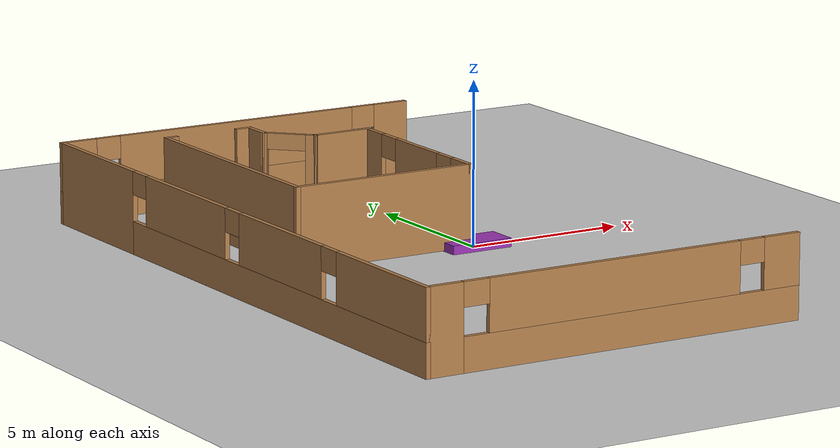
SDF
<sdf version="1.6">
 <world name="default">
  <model name="ground_plane">
   <static>1</static>
   <link name="link">
    <collision name="collision">
     <geometry><plane><normal>0 0 1</normal><size>100 100</size></plane></geometry>
     <surface>
      <contact><collide_bitmask>65535</collide_bitmask></contact>
      <friction><ode><mu>100</mu><mu2>50</mu2></ode></friction>
     </surface>
    </collision>
    <visual name="visual">
     <cast_shadows>0</cast_shadows>
     <geometry><plane><normal>0 0 1</normal><size>100 100</size></plane></geometry>
     <material>
      <script><uri>file://media/materials/scripts/gazebo.material</uri><name>Gazebo/Grey</name></script>
     </material>
    </visual>
   </link>
  </model>
  <model name="hospital_room_empty">
   <link name="Wall_0">
    <pose>-4e-06 -3.9165 0 0 -0 0</pose>
    <visual name="Wall_0_Visual">
     <pose>0 0 1.25 0 -0 0</pose>
     <geometry><box><size>6 0.15 2.5</size></box></geometry>
     <material>
      <script><uri>file://media/materials/scripts/gazebo.material</uri><name>Gazebo/Wood</name></script>
      <ambient>1 1 1 1</ambient>
     </material>
     <meta><layer>0</layer></meta>
    </visual>
    <collision name="Wall_0_Collision">
     <pose>0 0 1.25 0 -0 0</pose>
     <geometry><box><size>6 0.15 2.5</size></box></geometry>
     <surface>
      <friction>
       <ode><mu>1</mu><mu2>1</mu2><fdir1>0 0 0</fdir1><slip1>0</slip1><slip2>0</slip2></ode>
       <torsional>
        <coefficient>1</coefficient>
        <patch_radius>0</patch_radius>
        <surface_radius>0</surface_radius>
        <use_patch_radius>1</use_patch_radius>
        <ode><slip>0</slip></ode>
       </torsional>
      </friction>
      <bounce><restitution_coefficient>0</restitution_coefficient><threshold>1e+06</threshold></bounce>
      <contact>
       <collide_without_contact>0</collide_without_contact>
       <collide_without_contact_bitmask>1</collide_without_contact_bitmask>
       <collide_bitmask>1</collide_bitmask>
       <ode>
        <soft_cfm>0</soft_cfm>
        <soft_erp>0.2</soft_erp>
        <kp>1e+13</kp>
        <kd>1</kd>
        <max_vel>0.01</max_vel>
        <min_depth>0</min_depth>
       </ode>
       <bullet>
        <split_impulse>1</split_impulse>
        <split_impulse_penetration_threshold>-0.01</split_impulse_penetration_threshold>
        <soft_cfm>0</soft_cfm>
        <soft_erp>0.2</soft_erp>
        <kp>1e+13</kp>
        <kd>1</kd>
       </bullet>
      </contact>
     </surface>
    </collision>
   </link>
   <link name="Wall_3">
    <pose>-2.925 0 0 0 -0 1.5708</pose>
    <visual name="Wall_3_Visual">
     <pose>0 0 1.25 0 -0 0</pose>
     <geometry><box><size>7.98302 0.15 2.5</size></box></geometry>
     <material>
      <script><uri>file://media/materials/scripts/gazebo.material</uri><name>Gazebo/Wood</name></script>
      <ambient>1 1 1 1</ambient>
     </material>
     <meta><layer>0</layer></meta>
    </visual>
    <collision name="Wall_3_Collision">
     <pose>0 0 1.25 0 -0 0</pose>
     <geometry><box><size>7.98302 0.15 2.5</size></box></geometry>
     <surface>
      <friction>
       <ode><mu>1</mu><mu2>1</mu2><fdir1>0 0 0</fdir1><slip1>0</slip1><slip2>0</slip2></ode>
       <torsional>
        <coefficient>1</coefficient>
        <patch_radius>0</patch_radius>
        <surface_radius>0</surface_radius>
        <use_patch_radius>1</use_patch_radius>
        <ode><slip>0</slip></ode>
       </torsional>
      </friction>
      <bounce><restitution_coefficient>0</restitution_coefficient><threshold>1e+06</threshold></bounce>
      <contact>
       <collide_without_contact>0</collide_without_contact>
       <collide_without_contact_bitmask>1</collide_without_contact_bitmask>
       <collide_bitmask>1</collide_bitmask>
       <ode>
        <soft_cfm>0</soft_cfm>
        <soft_erp>0.2</soft_erp>
        <kp>1e+13</kp>
        <kd>1</kd>
        <max_vel>0.01</max_vel>
        <min_depth>0</min_depth>
       </ode>
       <bullet>
        <split_impulse>1</split_impulse>
        <split_impulse_penetration_threshold>-0.01</split_impulse_penetration_threshold>
        <soft_cfm>0</soft_cfm>
        <soft_erp>0.2</soft_erp>
        <kp>1e+13</kp>
        <kd>1</kd>
       </bullet>
      </contact>
     </surface>
    </collision>
   </link>
   <link name="Wall_4">
    <pose>-1.5 3.9165 0 0 -0 0</pose>
    <visual name="Wall_4_Visual_0">
     <pose>-1.28125 0 1.25 0 -0 0</pose>
     <geometry><box><size>0.437506 0.15 2.5</size></box></geometry>
     <material>
      <script><uri>file://media/materials/scripts/gazebo.material</uri><name>Gazebo/Wood</name></script>
      <ambient>1 1 1 1</ambient>
     </material>
     <meta><layer>0</layer></meta>
    </visual>
    <visual name="Wall_4_Visual_1">
     <pose>0.218753 0 0.25 0 -0 0</pose>
     <geometry><box><size>2.56249 0.15 0.5</size></box></geometry>
     <material>
      <script><uri>file://media/materials/scripts/gazebo.material</uri><name>Gazebo/Wood</name></script>
      <ambient>1 1 1 1</ambient>
     </material>
     <meta><layer>0</layer></meta>
    </visual>
    <visual name="Wall_4_Visual_2">
     <pose>1.21875 0 1.5 0 -0 0</pose>
     <geometry><box><size>0.562494 0.15 2</size></box></geometry>
     <material>
      <script><uri>file://media/materials/scripts/gazebo.material</uri><name>Gazebo/Wood</name></script>
      <ambient>1 1 1 1</ambient>
     </material>
     <meta><layer>0</layer></meta>
    </visual>
    <collision name="Wall_4_Collision_0">
     <pose>-1.28125 0 1.25 0 -0 0</pose>
     <geometry><box><size>0.437506 0.15 2.5</size></box></geometry>
     <surface>
      <friction>
       <ode><mu>1</mu><mu2>1</mu2><fdir1>0 0 0</fdir1><slip1>0</slip1><slip2>0</slip2></ode>
       <torsional>
        <coefficient>1</coefficient>
        <patch_radius>0</patch_radius>
        <surface_radius>0</surface_radius>
        <use_patch_radius>1</use_patch_radius>
        <ode><slip>0</slip></ode>
       </torsional>
      </friction>
      <bounce><restitution_coefficient>0</restitution_coefficient><threshold>1e+06</threshold></bounce>
      <contact>
       <collide_without_contact>0</collide_without_contact>
       <collide_without_contact_bitmask>1</collide_without_contact_bitmask>
       <collide_bitmask>1</collide_bitmask>
       <ode>
        <soft_cfm>0</soft_cfm>
        <soft_erp>0.2</soft_erp>
        <kp>1e+13</kp>
        <kd>1</kd>
        <max_vel>0.01</max_vel>
        <min_depth>0</min_depth>
       </ode>
       <bullet>
        <split_impulse>1</split_impulse>
        <split_impulse_penetration_threshold>-0.01</split_impulse_penetration_threshold>
        <soft_cfm>0</soft_cfm>
        <soft_erp>0.2</soft_erp>
        <kp>1e+13</kp>
        <kd>1</kd>
       </bullet>
      </contact>
     </surface>
    </collision>
    <collision name="Wall_4_Collision_1">
     <pose>0.218753 0 0.25 0 -0 0</pose>
     <geometry><box><size>2.56249 0.15 0.5</size></box></geometry>
     <surface>
      <friction>
       <ode><mu>1</mu><mu2>1</mu2><fdir1>0 0 0</fdir1><slip1>0</slip1><slip2>0</slip2></ode>
       <torsional>
        <coefficient>1</coefficient>
        <patch_radius>0</patch_radius>
        <surface_radius>0</surface_radius>
        <use_patch_radius>1</use_patch_radius>
        <ode><slip>0</slip></ode>
       </torsional>
      </friction>
      <bounce><restitution_coefficient>0</restitution_coefficient><threshold>1e+06</threshold></bounce>
      <contact>
       <collide_without_contact>0</collide_without_contact>
       <collide_without_contact_bitmask>1</collide_without_contact_bitmask>
       <collide_bitmask>1</collide_bitmask>
       <ode>
        <soft_cfm>0</soft_cfm>
        <soft_erp>0.2</soft_erp>
        <kp>1e+13</kp>
        <kd>1</kd>
        <max_vel>0.01</max_vel>
        <min_depth>0</min_depth>
       </ode>
       <bullet>
        <split_impulse>1</split_impulse>
        <split_impulse_penetration_threshold>-0.01</split_impulse_penetration_threshold>
        <soft_cfm>0</soft_cfm>
        <soft_erp>0.2</soft_erp>
        <kp>1e+13</kp>
        <kd>1</kd>
       </bullet>
      </contact>
     </surface>
    </collision>
    <collision name="Wall_4_Collision_2">
     <pose>1.21875 0 1.5 0 -0 0</pose>
     <geometry><box><size>0.562494 0.15 2</size></box></geometry>
     <surface>
      <friction>
       <ode><mu>1</mu><mu2>1</mu2><fdir1>0 0 0</fdir1><slip1>0</slip1><slip2>0</slip2></ode>
       <torsional>
        <coefficient>1</coefficient>
        <patch_radius>0</patch_radius>
        <surface_radius>0</surface_radius>
        <use_patch_radius>1</use_patch_radius>
        <ode><slip>0</slip></ode>
       </torsional>
      </friction>
      <bounce><restitution_coefficient>0</restitution_coefficient><threshold>1e+06</threshold></bounce>
      <contact>
       <collide_without_contact>0</collide_without_contact>
       <collide_without_contact_bitmask>1</collide_without_contact_bitmask>
       <collide_bitmask>1</collide_bitmask>
       <ode>
        <soft_cfm>0</soft_cfm>
        <soft_erp>0.2</soft_erp>
        <kp>1e+13</kp>
        <kd>1</kd>
        <max_vel>0.01</max_vel>
        <min_depth>0</min_depth>
       </ode>
       <bullet>
        <split_impulse>1</split_impulse>
        <split_impulse_penetration_threshold>-0.01</split_impulse_penetration_threshold>
        <soft_cfm>0</soft_cfm>
        <soft_erp>0.2</soft_erp>
        <kp>1e+13</kp>
        <kd>1</kd>
       </bullet>
      </contact>
     </surface>
    </collision>
   </link>
   <link name="Wall_5">
    <pose>-0.075004 3.4915 0 0 0 -1.5708</pose>
    <visual name="Wall_5_Visual">
     <pose>0 0 1.25 0 -0 0</pose>
     <geometry><box><size>1 0.15 2.5</size></box></geometry>
     <material>
      <script><uri>file://media/materials/scripts/gazebo.material</uri><name>Gazebo/Wood</name></script>
      <ambient>1 1 1 1</ambient>
     </material>
     <meta><layer>0</layer></meta>
    </visual>
    <collision name="Wall_5_Collision">
     <pose>0 0 1.25 0 -0 0</pose>
     <geometry><box><size>1 0.15 2.5</size></box></geometry>
     <surface>
      <friction>
       <ode><mu>1</mu><mu2>1</mu2><fdir1>0 0 0</fdir1><slip1>0</slip1><slip2>0</slip2></ode>
       <torsional>
        <coefficient>1</coefficient>
        <patch_radius>0</patch_radius>
        <surface_radius>0</surface_radius>
        <use_patch_radius>1</use_patch_radius>
        <ode><slip>0</slip></ode>
       </torsional>
      </friction>
      <bounce><restitution_coefficient>0</restitution_coefficient><threshold>1e+06</threshold></bounce>
      <contact>
       <collide_without_contact>0</collide_without_contact>
       <collide_without_contact_bitmask>1</collide_without_contact_bitmask>
       <collide_bitmask>1</collide_bitmask>
       <ode>
        <soft_cfm>0</soft_cfm>
        <soft_erp>0.2</soft_erp>
        <kp>1e+13</kp>
        <kd>1</kd>
        <max_vel>0.01</max_vel>
        <min_depth>0</min_depth>
       </ode>
       <bullet>
        <split_impulse>1</split_impulse>
        <split_impulse_penetration_threshold>-0.01</split_impulse_penetration_threshold>
        <soft_cfm>0</soft_cfm>
        <soft_erp>0.2</soft_erp>
        <kp>1e+13</kp>
        <kd>1</kd>
       </bullet>
      </contact>
     </surface>
    </collision>
   </link>
   <link name="Wall_7">
    <pose>2.925 -1 0 0 -0 1.5708</pose>
    <visual name="Wall_7_Visual_0">
     <pose>-2.47597 0 1.25 0 -0 0</pose>
     <geometry><box><size>1.03106 0.15 2.5</size></box></geometry>
     <material>
      <script><uri>file://media/materials/scripts/gazebo.material</uri><name>Gazebo/Wood</name></script>
      <ambient>0.921569 0.807843 0.615686 1</ambient>
     </material>
     <meta><layer>0</layer></meta>
    </visual>
    <visual name="Wall_7_Visual_1">
     <pose>0.515531 0 0.5 0 -0 0</pose>
     <geometry><box><size>4.95194 0.15 1</size></box></geometry>
     <material>
      <script><uri>file://media/materials/scripts/gazebo.material</uri><name>Gazebo/Wood</name></script>
      <ambient>0.921569 0.807843 0.615686 1</ambient>
     </material>
     <meta><layer>0</layer></meta>
    </visual>
    <visual name="Wall_7_Visual_2">
     <pose>0.016139 0 1.75 0 -0 0</pose>
     <geometry><box><size>2.35315 0.15 1.5</size></box></geometry>
     <material>
      <script><uri>file://media/materials/scripts/gazebo.material</uri><name>Gazebo/Wood</name></script>
      <ambient>0.921569 0.807843 0.615686 1</ambient>
     </material>
     <meta><layer>0</layer></meta>
    </visual>
    <visual name="Wall_7_Visual_3">
     <pose>2.49211 0 1.75 0 -0 0</pose>
     <geometry><box><size>0.998785 0.15 1.5</size></box></geometry>
     <material>
      <script><uri>file://media/materials/scripts/gazebo.material</uri><name>Gazebo/Wood</name></script>
      <ambient>0.921569 0.807843 0.615686 1</ambient>
     </material>
     <meta><layer>0</layer></meta>
    </visual>
    <visual name="Wall_7_Visual_4">
     <pose>-1.56044 0 2.15 0 -0 0</pose>
     <geometry><box><size>0.8 0.15 0.7</size></box></geometry>
     <material>
      <script><uri>file://media/materials/scripts/gazebo.material</uri><name>Gazebo/Wood</name></script>
      <ambient>0.921569 0.807843 0.615686 1</ambient>
     </material>
     <meta><layer>0</layer></meta>
    </visual>
    <visual name="Wall_7_Visual_5">
     <pose>1.59272 0 2.15 0 -0 0</pose>
     <geometry><box><size>0.8 0.15 0.7</size></box></geometry>
     <material>
      <script><uri>file://media/materials/scripts/gazebo.material</uri><name>Gazebo/Wood</name></script>
      <ambient>0.921569 0.807843 0.615686 1</ambient>
     </material>
     <meta><layer>0</layer></meta>
    </visual>
    <collision name="Wall_7_Collision_0">
     <pose>-2.47597 0 1.25 0 -0 0</pose>
     <geometry><box><size>1.03106 0.15 2.5</size></box></geometry>
     <surface>
      <friction>
       <ode><mu>1</mu><mu2>1</mu2><fdir1>0 0 0</fdir1><slip1>0</slip1><slip2>0</slip2></ode>
       <torsional>
        <coefficient>1</coefficient>
        <patch_radius>0</patch_radius>
        <surface_radius>0</surface_radius>
        <use_patch_radius>1</use_patch_radius>
        <ode><slip>0</slip></ode>
       </torsional>
      </friction>
      <bounce><restitution_coefficient>0</restitution_coefficient><threshold>1e+06</threshold></bounce>
      <contact>
       <collide_without_contact>0</collide_without_contact>
       <collide_without_contact_bitmask>1</collide_without_contact_bitmask>
       <collide_bitmask>1</collide_bitmask>
       <ode>
        <soft_cfm>0</soft_cfm>
        <soft_erp>0.2</soft_erp>
        <kp>1e+13</kp>
        <kd>1</kd>
        <max_vel>0.01</max_vel>
        <min_depth>0</min_depth>
       </ode>
       <bullet>
        <split_impulse>1</split_impulse>
        <split_impulse_penetration_threshold>-0.01</split_impulse_penetration_threshold>
        <soft_cfm>0</soft_cfm>
        <soft_erp>0.2</soft_erp>
        <kp>1e+13</kp>
        <kd>1</kd>
       </bullet>
      </contact>
     </surface>
    </collision>
    <collision name="Wall_7_Collision_1">
     <pose>0.515531 0 0.5 0 -0 0</pose>
     <geometry><box><size>4.95194 0.15 1</size></box></geometry>
     <surface>
      <friction>
       <ode><mu>1</mu><mu2>1</mu2><fdir1>0 0 0</fdir1><slip1>0</slip1><slip2>0</slip2></ode>
       <torsional>
        <coefficient>1</coefficient>
        <patch_radius>0</patch_radius>
        <surface_radius>0</surface_radius>
        <use_patch_radius>1</use_patch_radius>
        <ode><slip>0</slip></ode>
       </torsional>
      </friction>
      <bounce><restitution_coefficient>0</restitution_coefficient><threshold>1e+06</threshold></bounce>
      <contact>
       <collide_without_contact>0</collide_without_contact>
       <collide_without_contact_bitmask>1</collide_without_contact_bitmask>
       <collide_bitmask>1</collide_bitmask>
       <ode>
        <soft_cfm>0</soft_cfm>
        <soft_erp>0.2</soft_erp>
        <kp>1e+13</kp>
        <kd>1</kd>
        <max_vel>0.01</max_vel>
        <min_depth>0</min_depth>
       </ode>
       <bullet>
        <split_impulse>1</split_impulse>
        <split_impulse_penetration_threshold>-0.01</split_impulse_penetration_threshold>
        <soft_cfm>0</soft_cfm>
        <soft_erp>0.2</soft_erp>
        <kp>1e+13</kp>
        <kd>1</kd>
       </bullet>
      </contact>
     </surface>
    </collision>
    <collision name="Wall_7_Collision_2">
     <pose>0.016139 0 1.75 0 -0 0</pose>
     <geometry><box><size>2.35315 0.15 1.5</size></box></geometry>
     <surface>
      <friction>
       <ode><mu>1</mu><mu2>1</mu2><fdir1>0 0 0</fdir1><slip1>0</slip1><slip2>0</slip2></ode>
       <torsional>
        <coefficient>1</coefficient>
        <patch_radius>0</patch_radius>
        <surface_radius>0</surface_radius>
        <use_patch_radius>1</use_patch_radius>
        <ode><slip>0</slip></ode>
       </torsional>
      </friction>
      <bounce><restitution_coefficient>0</restitution_coefficient><threshold>1e+06</threshold></bounce>
      <contact>
       <collide_without_contact>0</collide_without_contact>
       <collide_without_contact_bitmask>1</collide_without_contact_bitmask>
       <collide_bitmask>1</collide_bitmask>
       <ode>
        <soft_cfm>0</soft_cfm>
        <soft_erp>0.2</soft_erp>
        <kp>1e+13</kp>
        <kd>1</kd>
        <max_vel>0.01</max_vel>
        <min_depth>0</min_depth>
       </ode>
       <bullet>
        <split_impulse>1</split_impulse>
        <split_impulse_penetration_threshold>-0.01</split_impulse_penetration_threshold>
        <soft_cfm>0</soft_cfm>
        <soft_erp>0.2</soft_erp>
        <kp>1e+13</kp>
        <kd>1</kd>
       </bullet>
      </contact>
     </surface>
    </collision>
    <collision name="Wall_7_Collision_3">
     <pose>2.49211 0 1.75 0 -0 0</pose>
     <geometry><box><size>0.998785 0.15 1.5</size></box></geometry>
     <surface>
      <friction>
       <ode><mu>1</mu><mu2>1</mu2><fdir1>0 0 0</fdir1><slip1>0</slip1><slip2>0</slip2></ode>
       <torsional>
        <coefficient>1</coefficient>
        <patch_radius>0</patch_radius>
        <surface_radius>0</surface_radius>
        <use_patch_radius>1</use_patch_radius>
        <ode><slip>0</slip></ode>
       </torsional>
      </friction>
      <bounce><restitution_coefficient>0</restitution_coefficient><threshold>1e+06</threshold></bounce>
      <contact>
       <collide_without_contact>0</collide_without_contact>
       <collide_without_contact_bitmask>1</collide_without_contact_bitmask>
       <collide_bitmask>1</collide_bitmask>
       <ode>
        <soft_cfm>0</soft_cfm>
        <soft_erp>0.2</soft_erp>
        <kp>1e+13</kp>
        <kd>1</kd>
        <max_vel>0.01</max_vel>
        <min_depth>0</min_depth>
       </ode>
       <bullet>
        <split_impulse>1</split_impulse>
        <split_impulse_penetration_threshold>-0.01</split_impulse_penetration_threshold>
        <soft_cfm>0</soft_cfm>
        <soft_erp>0.2</soft_erp>
        <kp>1e+13</kp>
        <kd>1</kd>
       </bullet>
      </contact>
     </surface>
    </collision>
    <collision name="Wall_7_Collision_4">
     <pose>-1.56044 0 2.15 0 -0 0</pose>
     <geometry><box><size>0.8 0.15 0.7</size></box></geometry>
     <surface>
      <friction>
       <ode><mu>1</mu><mu2>1</mu2><fdir1>0 0 0</fdir1><slip1>0</slip1><slip2>0</slip2></ode>
       <torsional>
        <coefficient>1</coefficient>
        <patch_radius>0</patch_radius>
        <surface_radius>0</surface_radius>
        <use_patch_radius>1</use_patch_radius>
        <ode><slip>0</slip></ode>
       </torsional>
      </friction>
      <bounce><restitution_coefficient>0</restitution_coefficient><threshold>1e+06</threshold></bounce>
      <contact>
       <collide_without_contact>0</collide_without_contact>
       <collide_without_contact_bitmask>1</collide_without_contact_bitmask>
       <collide_bitmask>1</collide_bitmask>
       <ode>
        <soft_cfm>0</soft_cfm>
        <soft_erp>0.2</soft_erp>
        <kp>1e+13</kp>
        <kd>1</kd>
        <max_vel>0.01</max_vel>
        <min_depth>0</min_depth>
       </ode>
       <bullet>
        <split_impulse>1</split_impulse>
        <split_impulse_penetration_threshold>-0.01</split_impulse_penetration_threshold>
        <soft_cfm>0</soft_cfm>
        <soft_erp>0.2</soft_erp>
        <kp>1e+13</kp>
        <kd>1</kd>
       </bullet>
      </contact>
     </surface>
    </collision>
    <collision name="Wall_7_Collision_5">
     <pose>1.59272 0 2.15 0 -0 0</pose>
     <geometry><box><size>0.8 0.15 0.7</size></box></geometry>
     <surface>
      <friction>
       <ode><mu>1</mu><mu2>1</mu2><fdir1>0 0 0</fdir1><slip1>0</slip1><slip2>0</slip2></ode>
       <torsional>
        <coefficient>1</coefficient>
        <patch_radius>0</patch_radius>
        <surface_radius>0</surface_radius>
        <use_patch_radius>1</use_patch_radius>
        <ode><slip>0</slip></ode>
       </torsional>
      </friction>
      <bounce><restitution_coefficient>0</restitution_coefficient><threshold>1e+06</threshold></bounce>
      <contact>
       <collide_without_contact>0</collide_without_contact>
       <collide_without_contact_bitmask>1</collide_without_contact_bitmask>
       <collide_bitmask>1</collide_bitmask>
       <ode>
        <soft_cfm>0</soft_cfm>
        <soft_erp>0.2</soft_erp>
        <kp>1e+13</kp>
        <kd>1</kd>
        <max_vel>0.01</max_vel>
        <min_depth>0</min_depth>
       </ode>
       <bullet>
        <split_impulse>1</split_impulse>
        <split_impulse_penetration_threshold>-0.01</split_impulse_penetration_threshold>
        <soft_cfm>0</soft_cfm>
        <soft_erp>0.2</soft_erp>
        <kp>1e+13</kp>
        <kd>1</kd>
       </bullet>
      </contact>
     </surface>
    </collision>
   </link>
   <link name="Wall_8">
    <pose>2 1.9166 0 0 -0 3.14148</pose>
    <visual name="Wall_8_Visual">
     <pose>0 0 1.25 0 -0 0</pose>
     <geometry><box><size>2 0.15 2.5</size></box></geometry>
     <material>
      <script><uri>file://media/materials/scripts/gazebo.material</uri><name>Gazebo/Wood</name></script>
      <ambient>1 1 1 1</ambient>
     </material>
     <meta><layer>0</layer></meta>
    </visual>
    <collision name="Wall_8_Collision">
     <pose>0 0 1.25 0 -0 0</pose>
     <geometry><box><size>2 0.15 2.5</size></box></geometry>
     <surface>
      <friction>
       <ode><mu>1</mu><mu2>1</mu2><fdir1>0 0 0</fdir1><slip1>0</slip1><slip2>0</slip2></ode>
       <torsional>
        <coefficient>1</coefficient>
        <patch_radius>0</patch_radius>
        <surface_radius>0</surface_radius>
        <use_patch_radius>1</use_patch_radius>
        <ode><slip>0</slip></ode>
       </torsional>
      </friction>
      <bounce><restitution_coefficient>0</restitution_coefficient><threshold>1e+06</threshold></bounce>
      <contact>
       <collide_without_contact>0</collide_without_contact>
       <collide_without_contact_bitmask>1</collide_without_contact_bitmask>
       <collide_bitmask>1</collide_bitmask>
       <ode>
        <soft_cfm>0</soft_cfm>
        <soft_erp>0.2</soft_erp>
        <kp>1e+13</kp>
        <kd>1</kd>
        <max_vel>0.01</max_vel>
        <min_depth>0</min_depth>
       </ode>
       <bullet>
        <split_impulse>1</split_impulse>
        <split_impulse_penetration_threshold>-0.01</split_impulse_penetration_threshold>
        <soft_cfm>0</soft_cfm>
        <soft_erp>0.2</soft_erp>
        <kp>1e+13</kp>
        <kd>1</kd>
       </bullet>
      </contact>
     </surface>
    </collision>
   </link>
   <link name="Wall_9">
    <pose>0.499996 2.4916 0 0 -0 2.35628</pose>
    <visual name="Wall_9_Visual_1">
     <pose>0.785148 0 1.25 0 -0 0</pose>
     <geometry><box><size>0.205905 0.15 2.5</size></box></geometry>
     <material>
      <script><uri>file://media/materials/scripts/gazebo.material</uri><name>Gazebo/Wood</name></script>
      <ambient>1 1 1 1</ambient>
     </material>
     <meta><layer>0</layer></meta>
    </visual>
    <visual name="Wall_9_Visual_0">
     <pose>-0.702952 0 1.25 0 -0 0</pose>
     <geometry><box><size>0.370295 0.15 2.5</size></box></geometry>
     <material>
      <script><uri>file://media/materials/scripts/gazebo.material</uri><name>Gazebo/Wood</name></script>
      <ambient>1 1 1 1</ambient>
     </material>
     <meta><layer>0</layer></meta>
    </visual>
    <visual name="Wall_9_Visual_2">
     <pose>0.082195 0 2.25 0 -0 0</pose>
     <geometry><box><size>1.2 0.15 0.5</size></box></geometry>
     <material>
      <script><uri>file://media/materials/scripts/gazebo.material</uri><name>Gazebo/Wood</name></script>
      <ambient>1 1 1 1</ambient>
     </material>
     <meta><layer>0</layer></meta>
    </visual>
    <collision name="Wall_9_Collision_0">
     <pose>-0.702952 0 1.25 0 -0 0</pose>
     <geometry><box><size>0.370295 0.15 2.5</size></box></geometry>
     <surface>
      <friction>
       <ode><mu>1</mu><mu2>1</mu2><fdir1>0 0 0</fdir1><slip1>0</slip1><slip2>0</slip2></ode>
       <torsional>
        <coefficient>1</coefficient>
        <patch_radius>0</patch_radius>
        <surface_radius>0</surface_radius>
        <use_patch_radius>1</use_patch_radius>
        <ode><slip>0</slip></ode>
       </torsional>
      </friction>
      <bounce><restitution_coefficient>0</restitution_coefficient><threshold>1e+06</threshold></bounce>
      <contact>
       <collide_without_contact>0</collide_without_contact>
       <collide_without_contact_bitmask>1</collide_without_contact_bitmask>
       <collide_bitmask>1</collide_bitmask>
       <ode>
        <soft_cfm>0</soft_cfm>
        <soft_erp>0.2</soft_erp>
        <kp>1e+13</kp>
        <kd>1</kd>
        <max_vel>0.01</max_vel>
        <min_depth>0</min_depth>
       </ode>
       <bullet>
        <split_impulse>1</split_impulse>
        <split_impulse_penetration_threshold>-0.01</split_impulse_penetration_threshold>
        <soft_cfm>0</soft_cfm>
        <soft_erp>0.2</soft_erp>
        <kp>1e+13</kp>
        <kd>1</kd>
       </bullet>
      </contact>
     </surface>
    </collision>
    <collision name="Wall_9_Collision_1">
     <pose>0.785148 0 1.25 0 -0 0</pose>
     <geometry><box><size>0.205905 0.15 2.5</size></box></geometry>
     <surface>
      <friction>
       <ode><mu>1</mu><mu2>1</mu2><fdir1>0 0 0</fdir1><slip1>0</slip1><slip2>0</slip2></ode>
       <torsional>
        <coefficient>1</coefficient>
        <patch_radius>0</patch_radius>
        <surface_radius>0</surface_radius>
        <use_patch_radius>1</use_patch_radius>
        <ode><slip>0</slip></ode>
       </torsional>
      </friction>
      <bounce><restitution_coefficient>0</restitution_coefficient><threshold>1e+06</threshold></bounce>
      <contact>
       <collide_without_contact>0</collide_without_contact>
       <collide_without_contact_bitmask>1</collide_without_contact_bitmask>
       <collide_bitmask>1</collide_bitmask>
       <ode>
        <soft_cfm>0</soft_cfm>
        <soft_erp>0.2</soft_erp>
        <kp>1e+13</kp>
        <kd>1</kd>
        <max_vel>0.01</max_vel>
        <min_depth>0</min_depth>
       </ode>
       <bullet>
        <split_impulse>1</split_impulse>
        <split_impulse_penetration_threshold>-0.01</split_impulse_penetration_threshold>
        <soft_cfm>0</soft_cfm>
        <soft_erp>0.2</soft_erp>
        <kp>1e+13</kp>
        <kd>1</kd>
       </bullet>
      </contact>
     </surface>
    </collision>
    <collision name="Wall_9_Collision_2">
     <pose>0.082195 0 2.25 0 -0 0</pose>
     <geometry><box><size>1.2 0.15 0.5</size></box></geometry>
     <surface>
      <friction>
       <ode><mu>1</mu><mu2>1</mu2><fdir1>0 0 0</fdir1><slip1>0</slip1><slip2>0</slip2></ode>
       <torsional>
        <coefficient>1</coefficient>
        <patch_radius>0</patch_radius>
        <surface_radius>0</surface_radius>
        <use_patch_radius>1</use_patch_radius>
        <ode><slip>0</slip></ode>
       </torsional>
      </friction>
      <bounce><restitution_coefficient>0</restitution_coefficient><threshold>1e+06</threshold></bounce>
      <contact>
       <collide_without_contact>0</collide_without_contact>
       <collide_without_contact_bitmask>1</collide_without_contact_bitmask>
       <collide_bitmask>1</collide_bitmask>
       <ode>
        <soft_cfm>0</soft_cfm>
        <soft_erp>0.2</soft_erp>
        <kp>1e+13</kp>
        <kd>1</kd>
        <max_vel>0.01</max_vel>
        <min_depth>0</min_depth>
       </ode>
       <bullet>
        <split_impulse>1</split_impulse>
        <split_impulse_penetration_threshold>-0.01</split_impulse_penetration_threshold>
        <soft_cfm>0</soft_cfm>
        <soft_erp>0.2</soft_erp>
        <kp>1e+13</kp>
        <kd>1</kd>
       </bullet>
      </contact>
     </surface>
    </collision>
   </link>
   <static>1</static>
   <pose>-3.00848 4.0001 0 0 -0 0</pose>
  </model>
  <model name="hospital_corridor_2">
   <pose>-2.97557 -1.50857 0 0 -0 0</pose>
   <link name="Wall_12">
    <pose>1e-06 10.425 0 0 -0 3.14159</pose>
    <visual name="Wall_12_Visual_0">
     <pose>-5.44242 0 1.25 0 -0 0</pose>
     <geometry><box><size>1.19015 0.15 2.5</size></box></geometry>
     <material>
      <script><uri>file://media/materials/scripts/gazebo.material</uri><name>Gazebo/Wood</name></script>
      <ambient>1 1 1 1</ambient>
     </material>
     <meta><layer>0</layer></meta>
    </visual>
    <collision name="Wall_12_Collision_0">
     <geometry><box><size>1.19015 0.15 2.5</size></box></geometry>
     <pose>-5.44242 0 1.25 0 -0 0</pose>
    </collision>
    <visual name="Wall_12_Visual_1">
     <pose>0.595076 0 0.5 0 -0 0</pose>
     <geometry><box><size>10.8848 0.15 1</size></box></geometry>
     <material>
      <script><uri>file://media/materials/scripts/gazebo.material</uri><name>Gazebo/Wood</name></script>
      <ambient>1 1 1 1</ambient>
     </material>
     <meta><layer>0</layer></meta>
    </visual>
    <collision name="Wall_12_Collision_1">
     <geometry><box><size>10.8848 0.15 1</size></box></geometry>
     <pose>0.595076 0 0.5 0 -0 0</pose>
    </collision>
    <visual name="Wall_12_Visual_2">
     <pose>0.005295 0 1.75 0 -0 0</pose>
     <geometry><box><size>8.10528 0.15 1.5</size></box></geometry>
     <material>
      <script><uri>file://media/materials/scripts/gazebo.material</uri><name>Gazebo/Wood</name></script>
      <ambient>1 1 1 1</ambient>
     </material>
     <meta><layer>0</layer></meta>
    </visual>
    <collision name="Wall_12_Collision_2">
     <geometry><box><size>8.10528 0.15 1.5</size></box></geometry>
     <pose>0.005295 0 1.75 0 -0 0</pose>
    </collision>
    <visual name="Wall_12_Visual_3">
     <pose>5.44772 0 1.75 0 -0 0</pose>
     <geometry><box><size>1.17956 0.15 1.5</size></box></geometry>
     <material>
      <script><uri>file://media/materials/scripts/gazebo.material</uri><name>Gazebo/Wood</name></script>
      <ambient>1 1 1 1</ambient>
     </material>
     <meta><layer>0</layer></meta>
    </visual>
    <collision name="Wall_12_Collision_3">
     <geometry><box><size>1.17956 0.15 1.5</size></box></geometry>
     <pose>5.44772 0 1.75 0 -0 0</pose>
    </collision>
    <visual name="Wall_12_Visual_4">
     <pose>-4.44735 0 2.15 0 -0 0</pose>
     <geometry><box><size>0.8 0.15 0.7</size></box></geometry>
     <material>
      <script><uri>file://media/materials/scripts/gazebo.material</uri><name>Gazebo/Wood</name></script>
      <ambient>1 1 1 1</ambient>
     </material>
     <meta><layer>0</layer></meta>
    </visual>
    <collision name="Wall_12_Collision_4">
     <geometry><box><size>0.8 0.15 0.7</size></box></geometry>
     <pose>-4.44735 0 2.15 0 -0 0</pose>
    </collision>
    <visual name="Wall_12_Visual_5">
     <pose>4.45794 0 2.15 0 -0 0</pose>
     <geometry><box><size>0.8 0.15 0.7</size></box></geometry>
     <material>
      <script><uri>file://media/materials/scripts/gazebo.material</uri><name>Gazebo/Wood</name></script>
      <ambient>1 1 1 1</ambient>
     </material>
     <meta><layer>0</layer></meta>
    </visual>
    <collision name="Wall_12_Collision_5">
     <geometry><box><size>0.8 0.15 0.7</size></box></geometry>
     <pose>4.45794 0 2.15 0 -0 0</pose>
    </collision>
   </link>
   <link name="Wall_13">
    <pose>-5.9625 0 0 0 -0 -1.5708</pose>
    <visual name="Wall_13_Visual_0">
     <pose>-8.17263 0 1.25 0 -0 0</pose>
     <geometry><box><size>4.65474 0.15 2.5</size></box></geometry>
     <material>
      <script><uri>file://media/materials/scripts/gazebo.material</uri><name>Gazebo/Wood</name></script>
      <ambient>1 1 1 1</ambient>
     </material>
     <meta><layer>0</layer></meta>
    </visual>
    <collision name="Wall_13_Collision_0">
     <geometry><box><size>4.65474 0.15 2.5</size></box></geometry>
     <pose>-8.17263 0 1.25 0 -0 0</pose>
    </collision>
    <visual name="Wall_13_Visual_1">
     <pose>2.32737 0 0.5 0 -0 0</pose>
     <geometry><box><size>16.3453 0.15 1</size></box></geometry>
     <material>
      <script><uri>file://media/materials/scripts/gazebo.material</uri><name>Gazebo/Wood</name></script>
      <ambient>1 1 1 1</ambient>
     </material>
     <meta><layer>0</layer></meta>
    </visual>
    <collision name="Wall_13_Collision_1">
     <geometry><box><size>16.3453 0.15 1</size></box></geometry>
     <pose>2.32737 0 0.5 0 -0 0</pose>
    </collision>
    <visual name="Wall_13_Visual_2">
     <pose>-2.68115 0 1.75 0 -0 0</pose>
     <geometry><box><size>4.72821 0.15 1.5</size></box></geometry>
     <material>
      <script><uri>file://media/materials/scripts/gazebo.material</uri><name>Gazebo/Wood</name></script>
      <ambient>1 1 1 1</ambient>
     </material>
     <meta><layer>0</layer></meta>
    </visual>
    <collision name="Wall_13_Collision_2">
     <geometry><box><size>4.72821 0.15 1.5</size></box></geometry>
     <pose>-2.68115 0 1.75 0 -0 0</pose>
    </collision>
    <visual name="Wall_13_Visual_3">
     <pose>2.76611 0 1.75 0 -0 0</pose>
     <geometry><box><size>4.5663 0.15 1.5</size></box></geometry>
     <material>
      <script><uri>file://media/materials/scripts/gazebo.material</uri><name>Gazebo/Wood</name></script>
      <ambient>1 1 1 1</ambient>
     </material>
     <meta><layer>0</layer></meta>
    </visual>
    <collision name="Wall_13_Collision_3">
     <geometry><box><size>4.5663 0.15 1.5</size></box></geometry>
     <pose>2.76611 0 1.75 0 -0 0</pose>
    </collision>
    <visual name="Wall_13_Visual_4">
     <pose>8.17463 0 1.75 0 -0 0</pose>
     <geometry><box><size>4.65074 0.15 1.5</size></box></geometry>
     <material>
      <script><uri>file://media/materials/scripts/gazebo.material</uri><name>Gazebo/Wood</name></script>
      <ambient>1 1 1 1</ambient>
     </material>
     <meta><layer>0</layer></meta>
    </visual>
    <collision name="Wall_13_Collision_4">
     <geometry><box><size>4.65074 0.15 1.5</size></box></geometry>
     <pose>8.17463 0 1.75 0 -0 0</pose>
    </collision>
    <visual name="Wall_13_Visual_5">
     <pose>-5.44526 0 2.15 0 -0 0</pose>
     <geometry><box><size>0.8 0.15 0.7</size></box></geometry>
     <material>
      <script><uri>file://media/materials/scripts/gazebo.material</uri><name>Gazebo/Wood</name></script>
      <ambient>1 1 1 1</ambient>
     </material>
     <meta><layer>0</layer></meta>
    </visual>
    <collision name="Wall_13_Collision_5">
     <geometry><box><size>0.8 0.15 0.7</size></box></geometry>
     <pose>-5.44526 0 2.15 0 -0 0</pose>
    </collision>
    <visual name="Wall_13_Visual_6">
     <pose>0.082958 0 2.15 0 -0 0</pose>
     <geometry><box><size>0.8 0.15 0.7</size></box></geometry>
     <material>
      <script><uri>file://media/materials/scripts/gazebo.material</uri><name>Gazebo/Wood</name></script>
      <ambient>1 1 1 1</ambient>
     </material>
     <meta><layer>0</layer></meta>
    </visual>
    <collision name="Wall_13_Collision_6">
     <geometry><box><size>0.8 0.15 0.7</size></box></geometry>
     <pose>0.082958 0 2.15 0 -0 0</pose>
    </collision>
    <visual name="Wall_13_Visual_7">
     <pose>5.44926 0 2.15 0 -0 0</pose>
     <geometry><box><size>0.8 0.15 0.7</size></box></geometry>
     <material>
      <script><uri>file://media/materials/scripts/gazebo.material</uri><name>Gazebo/Wood</name></script>
      <ambient>1 1 1 1</ambient>
     </material>
     <meta><layer>0</layer></meta>
    </visual>
    <collision name="Wall_13_Collision_7">
     <geometry><box><size>0.8 0.15 0.7</size></box></geometry>
     <pose>5.44926 0 2.15 0 -0 0</pose>
    </collision>
   </link>
   <link name="Wall_14">
    <pose>1e-06 -10.425 0 0 -0 0</pose>
    <visual name="Wall_14_Visual_0">
     <pose>-5.44772 0 1.25 0 -0 0</pose>
     <geometry><box><size>1.17956 0.15 2.5</size></box></geometry>
     <material>
      <script><uri>file://media/materials/scripts/gazebo.material</uri><name>Gazebo/Wood</name></script>
      <ambient>1 1 1 1</ambient>
     </material>
     <meta><layer>0</layer></meta>
    </visual>
    <collision name="Wall_14_Collision_0">
     <geometry><box><size>1.17956 0.15 2.5</size></box></geometry>
     <pose>-5.44772 0 1.25 0 -0 0</pose>
    </collision>
    <visual name="Wall_14_Visual_1">
     <pose>0.589782 0 0.5 0 -0 0</pose>
     <geometry><box><size>10.8954 0.15 1</size></box></geometry>
     <material>
      <script><uri>file://media/materials/scripts/gazebo.material</uri><name>Gazebo/Wood</name></script>
      <ambient>1 1 1 1</ambient>
     </material>
     <meta><layer>0</layer></meta>
    </visual>
    <collision name="Wall_14_Collision_1">
     <geometry><box><size>10.8954 0.15 1</size></box></geometry>
     <pose>0.589782 0 0.5 0 -0 0</pose>
    </collision>
    <visual name="Wall_14_Visual_2">
     <pose>-0.005295 0 1.75 0 -0 0</pose>
     <geometry><box><size>8.10528 0.15 1.5</size></box></geometry>
     <material>
      <script><uri>file://media/materials/scripts/gazebo.material</uri><name>Gazebo/Wood</name></script>
      <ambient>1 1 1 1</ambient>
     </material>
     <meta><layer>0</layer></meta>
    </visual>
    <collision name="Wall_14_Collision_2">
     <geometry><box><size>8.10528 0.15 1.5</size></box></geometry>
     <pose>-0.005295 0 1.75 0 -0 0</pose>
    </collision>
    <visual name="Wall_14_Visual_3">
     <pose>5.44242 0 1.75 0 -0 0</pose>
     <geometry><box><size>1.19015 0.15 1.5</size></box></geometry>
     <material>
      <script><uri>file://media/materials/scripts/gazebo.material</uri><name>Gazebo/Wood</name></script>
      <ambient>1 1 1 1</ambient>
     </material>
     <meta><layer>0</layer></meta>
    </visual>
    <collision name="Wall_14_Collision_3">
     <geometry><box><size>1.19015 0.15 1.5</size></box></geometry>
     <pose>5.44242 0 1.75 0 -0 0</pose>
    </collision>
    <visual name="Wall_14_Visual_4">
     <pose>-4.45794 0 2.15 0 -0 0</pose>
     <geometry><box><size>0.8 0.15 0.7</size></box></geometry>
     <material>
      <script><uri>file://media/materials/scripts/gazebo.material</uri><name>Gazebo/Wood</name></script>
      <ambient>1 1 1 1</ambient>
     </material>
     <meta><layer>0</layer></meta>
    </visual>
    <collision name="Wall_14_Collision_4">
     <geometry><box><size>0.8 0.15 0.7</size></box></geometry>
     <pose>-4.45794 0 2.15 0 -0 0</pose>
    </collision>
    <visual name="Wall_14_Visual_5">
     <pose>4.44735 0 2.15 0 -0 0</pose>
     <geometry><box><size>0.8 0.15 0.7</size></box></geometry>
     <material>
      <script><uri>file://media/materials/scripts/gazebo.material</uri><name>Gazebo/Wood</name></script>
      <ambient>1 1 1 1</ambient>
     </material>
     <meta><layer>0</layer></meta>
    </visual>
    <collision name="Wall_14_Collision_5">
     <geometry><box><size>0.8 0.15 0.7</size></box></geometry>
     <pose>4.44735 0 2.15 0 -0 0</pose>
    </collision>
   </link>
   <static>1</static>
  </model>
  <model name="unit_box">
   <link name="link">
    <inertial>
     <mass>10</mass>
     <inertia><ixx>1</ixx><ixy>0</ixy><ixz>0</ixz><iyy>3.5</iyy><iyz>0</iyz><izz>4</izz></inertia>
    </inertial>
    <visual name="visual">
     <geometry><box><size>2 1 0.49</size></box></geometry>
     <material>
      <script><name>Gazebo/Purple</name><uri>file://media/materials/scripts/gazebo.material</uri></script>
      <shader type="vertex"><normal_map>__default__</normal_map></shader>
      <ambient>0.3 0 0.3 1</ambient>
      <diffuse>0.7 0 0.7 1</diffuse>
      <specular>0.1 0.1 0.1 1</specular>
      <emissive>0 0 0 1</emissive>
     </material>
    </visual>
    <collision name="collision">
     <geometry><box><size>2 1 0.49</size></box></geometry>
     <surface>
      <friction><ode><mu>10</mu><mu2>10</mu2></ode></friction>
      <bounce><restitution_coefficient>0</restitution_coefficient><threshold>1e+06</threshold></bounce>
      <contact>
       <collide_without_contact>0</collide_without_contact>
       <collide_without_contact_bitmask>1</collide_without_contact_bitmask>
       <collide_bitmask>1</collide_bitmask>
       <ode>
        <soft_cfm>0</soft_cfm>
        <soft_erp>0.2</soft_erp>
        <kp>1e+13</kp>
        <kd>1</kd>
        <max_vel>0.01</max_vel>
        <min_depth>0</min_depth>
       </ode>
       <bullet>
        <split_impulse>1</split_impulse>
        <split_impulse_penetration_threshold>-0.01</split_impulse_penetration_threshold>
        <soft_cfm>0</soft_cfm>
        <soft_erp>0.2</soft_erp>
        <kp>1e+13</kp>
        <kd>1</kd>
       </bullet>
      </contact>
     </surface>
    </collision>
   </link>
   <static>1</static>
  </model>
  <model name="unit_box_0">
   <link name="link">
    <inertial>
     <mass>0.5</mass>
     <inertia><ixx>0.0005</ixx><ixy>0</ixy><ixz>0</ixz><iyy>0.0005</iyy><iyz>0</iyz><izz>0.0002</izz></inertia>
    </inertial>
    <visual name="visual">
     <geometry><box><size>0.05 0.05 0.1</size></box></geometry>
     <material>
      <script><name>Gazebo/Grey</name><uri>file://media/materials/scripts/gazebo.material</uri></script>
      <shader type="vertex"><normal_map>__default__</normal_map></shader>
      <ambient>0.3 0.3 0.3 1</ambient>
      <diffuse>0.7 0.7 0.7 1</diffuse>
      <specular>0.01 0.01 0.01 1</specular>
      <emissive>0 0 0 1</emissive>
     </material>
    </visual>
    <collision name="collision">
     <geometry><box><size>0.05 0.05 0.1</size></box></geometry>
     <surface>
      <friction><ode><mu>10</mu><mu2>10</mu2></ode></friction>
      <bounce><restitution_coefficient>0</restitution_coefficient><threshold>1e+06</threshold></bounce>
      <contact>
       <collide_without_contact>0</collide_without_contact>
       <collide_without_contact_bitmask>1</collide_without_contact_bitmask>
       <collide_bitmask>1</collide_bitmask>
       <ode>
        <soft_cfm>0</soft_cfm>
        <soft_erp>0.2</soft_erp>
        <kp>1e+13</kp>
        <kd>1</kd>
        <max_vel>0</max_vel>
        <min_depth>0.001</min_depth>
       </ode>
       <bullet>
        <split_impulse>1</split_impulse>
        <split_impulse_penetration_threshold>-0.01</split_impulse_penetration_threshold>
        <soft_cfm>0</soft_cfm>
        <soft_erp>0.2</soft_erp>
        <kp>1e+13</kp>
        <kd>1</kd>
       </bullet>
      </contact>
     </surface>
    </collision>
   </link>
   <static>0</static>
  </model>
  <model name="unit_box_1">
   <link name="link">
    <inertial>
     <mass>0.5</mass>
     <inertia><ixx>0.0005</ixx><ixy>0</ixy><ixz>0</ixz><iyy>0.0005</iyy><iyz>0</iyz><izz>0.0002</izz></inertia>
    </inertial>
    <visual name="visual">
     <geometry><box><size>0.05 0.05 0.1</size></box></geometry>
     <material>
      <script><name>Gazebo/Grey</name><uri>file://media/materials/scripts/gazebo.material</uri></script>
      <shader type="vertex"><normal_map>__default__</normal_map></shader>
      <ambient>0.3 0.3 0.3 1</ambient>
      <diffuse>0.7 0.7 0.7 1</diffuse>
      <specular>0.01 0.01 0.01 1</specular>
      <emissive>0 0 0 1</emissive>
     </material>
    </visual>
    <collision name="collision">
     <geometry><box><size>0.05 0.05 0.1</size></box></geometry>
     <surface>
      <friction><ode><mu>100</mu><mu2>100</mu2></ode></friction>
      <bounce><restitution_coefficient>0</restitution_coefficient><threshold>1e+06</threshold></bounce>
      <contact>
       <collide_without_contact>0</collide_without_contact>
       <collide_without_contact_bitmask>1</collide_without_contact_bitmask>
       <collide_bitmask>1</collide_bitmask>
       <ode>
        <soft_cfm>0</soft_cfm>
        <soft_erp>0.2</soft_erp>
        <kp>1e+13</kp>
        <kd>1</kd>
        <max_vel>0</max_vel>
        <min_depth>0.001</min_depth>
       </ode>
       <bullet>
        <split_impulse>1</split_impulse>
        <split_impulse_penetration_threshold>-0.01</split_impulse_penetration_threshold>
        <soft_cfm>0</soft_cfm>
        <soft_erp>0.2</soft_erp>
        <kp>1e+13</kp>
        <kd>1</kd>
       </bullet>
      </contact>
     </surface>
    </collision>
   </link>
   <static>0</static>
  </model>
  <model name="unit_box_2">
   <link name="link">
    <inertial>
     <mass>0.5</mass>
     <inertia><ixx>0.0005</ixx><ixy>0</ixy><ixz>0</ixz><iyy>0.0005</iyy><iyz>0</iyz><izz>0.0002</izz></inertia>
    </inertial>
    <visual name="visual">
     <geometry><box><size>0.05 0.05 0.1</size></box></geometry>
     <material>
      <script><name>Gazebo/Grey</name><uri>file://media/materials/scripts/gazebo.material</uri></script>
      <shader type="vertex"><normal_map>__default__</normal_map></shader>
      <ambient>0.3 0.3 0.3 1</ambient>
      <diffuse>0.7 0.7 0.7 1</diffuse>
      <specular>0.01 0.01 0.01 1</specular>
      <emissive>0 0 0 1</emissive>
     </material>
    </visual>
    <collision name="collision">
     <geometry><box><size>0.05 0.05 0.1</size></box></geometry>
     <surface>
      <friction><ode><mu>10</mu><mu2>10</mu2></ode></friction>
      <bounce><restitution_coefficient>0</restitution_coefficient><threshold>1e+06</threshold></bounce>
      <contact>
       <collide_without_contact>0</collide_without_contact>
       <collide_without_contact_bitmask>1</collide_without_contact_bitmask>
       <collide_bitmask>1</collide_bitmask>
       <ode>
        <soft_cfm>0</soft_cfm>
        <soft_erp>0.2</soft_erp>
        <kp>1e+13</kp>
        <kd>1</kd>
        <max_vel>0</max_vel>
        <min_depth>0.001</min_depth>
       </ode>
       <bullet>
        <split_impulse>1</split_impulse>
        <split_impulse_penetration_threshold>-0.01</split_impulse_penetration_threshold>
        <soft_cfm>0</soft_cfm>
        <soft_erp>0.2</soft_erp>
        <kp>1e+13</kp>
        <kd>1</kd>
       </bullet>
      </contact>
     </surface>
    </collision>
   </link>
   <static>0</static>
  </model>
 </world>
</sdf>
